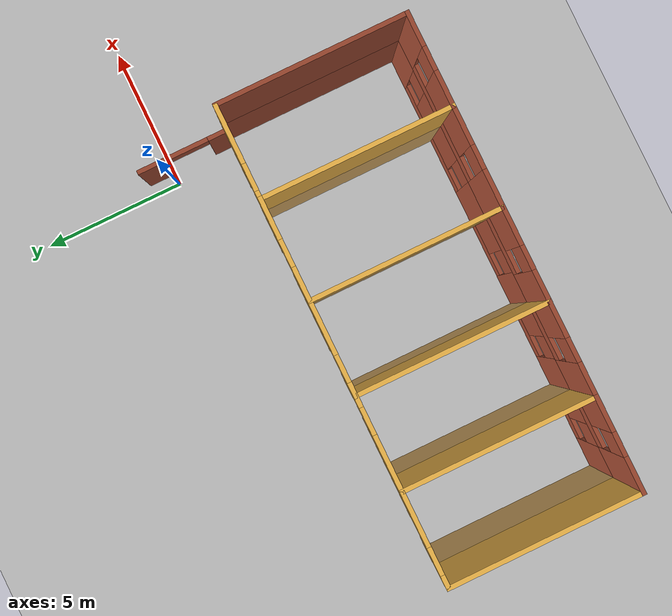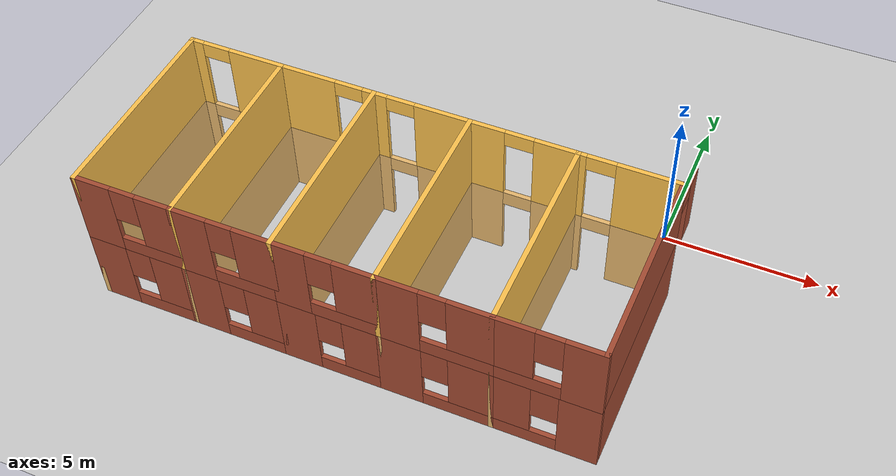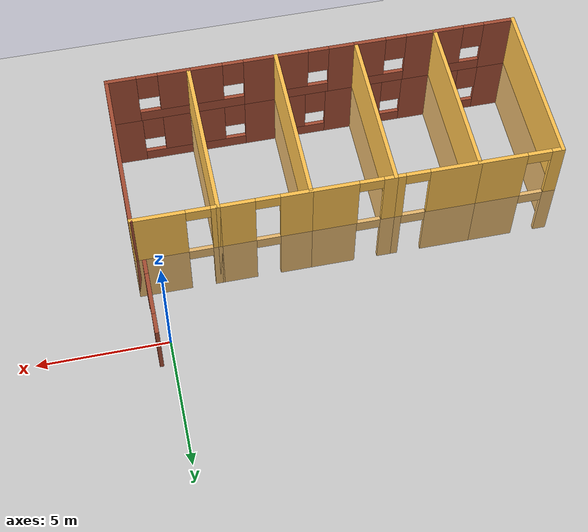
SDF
<sdf version="1.7">
 <world name="default">
  <model name="ground_plane">
   <static>1</static>
   <link name="link">
    <collision name="collision">
     <geometry><plane><normal>0 0 1</normal><size>100 100</size></plane></geometry>
     <surface>
      <contact><collide_bitmask>65535</collide_bitmask></contact>
      <friction><ode><mu>100</mu><mu2>50</mu2></ode></friction>
     </surface>
    </collision>
    <visual name="visual">
     <cast_shadows>0</cast_shadows>
     <geometry><plane><normal>0 0 1</normal><size>100 100</size></plane></geometry>
     <material>
      <script><uri>file://media/materials/scripts/gazebo.material</uri><name>Gazebo/Grey</name></script>
     </material>
    </visual>
   </link>
  </model>
  <model name="DepartmentBuilding">
   <pose>-25.6559 18.8293 0 0 -0 0</pose>
   <link name="Wall_15">
    <collision name="Wall_15_Collision">
     <geometry><box><size>6.5 0.15 2.5</size></box></geometry>
     <pose>0 0 1.25 0 -0 0</pose>
    </collision>
    <visual name="Wall_15_Visual">
     <pose>0 0 1.25 0 -0 0</pose>
     <geometry><box><size>6.5 0.15 2.5</size></box></geometry>
     <material>
      <script><uri>file://media/materials/scripts/gazebo.material</uri><name>Gazebo/Bricks</name></script>
      <ambient>1 1 1 1</ambient>
     </material>
     <meta><layer>0</layer></meta>
    </visual>
    <pose>26.3896 -24.2565 0 0 -0 -1.5708</pose>
   </link>
   <link name="Wall_16">
    <pose>24.8396 -27.4315 0 0 -0 3.14159</pose>
    <visual name="Wall_16_Visual_0">
     <pose>-1.01037 0 1.25 0 -0 0</pose>
     <geometry><box><size>1.22925 0.15 2.5</size></box></geometry>
     <material>
      <script><uri>file://media/materials/scripts/gazebo.material</uri><name>Gazebo/Bricks</name></script>
      <ambient>1 1 1 1</ambient>
     </material>
     <meta><layer>0</layer></meta>
    </visual>
    <collision name="Wall_16_Collision_0">
     <geometry><box><size>1.22925 0.15 2.5</size></box></geometry>
     <pose>-1.01037 0 1.25 0 -0 0</pose>
    </collision>
    <visual name="Wall_16_Visual_1">
     <pose>0.614626 0 0.25 0 -0 0</pose>
     <geometry><box><size>2.02075 0.15 0.5</size></box></geometry>
     <material>
      <script><uri>file://media/materials/scripts/gazebo.material</uri><name>Gazebo/Bricks</name></script>
      <ambient>1 1 1 1</ambient>
     </material>
     <meta><layer>0</layer></meta>
    </visual>
    <collision name="Wall_16_Collision_1">
     <geometry><box><size>2.02075 0.15 0.5</size></box></geometry>
     <pose>0.614626 0 0.25 0 -0 0</pose>
    </collision>
    <visual name="Wall_16_Visual_2">
     <pose>1.01463 0 1.5 0 -0 0</pose>
     <geometry><box><size>1.22075 0.15 2</size></box></geometry>
     <material>
      <script><uri>file://media/materials/scripts/gazebo.material</uri><name>Gazebo/Bricks</name></script>
      <ambient>1 1 1 1</ambient>
     </material>
     <meta><layer>0</layer></meta>
    </visual>
    <collision name="Wall_16_Collision_2">
     <geometry><box><size>1.22075 0.15 2</size></box></geometry>
     <pose>1.01463 0 1.5 0 -0 0</pose>
    </collision>
    <visual name="Wall_16_Visual_3">
     <pose>0.004251 0 1.9 0 -0 0</pose>
     <geometry><box><size>0.8 0.15 1.2</size></box></geometry>
     <material>
      <script><uri>file://media/materials/scripts/gazebo.material</uri><name>Gazebo/Bricks</name></script>
      <ambient>1 1 1 1</ambient>
     </material>
     <meta><layer>0</layer></meta>
    </visual>
    <collision name="Wall_16_Collision_3">
     <geometry><box><size>0.8 0.15 1.2</size></box></geometry>
     <pose>0.004251 0 1.9 0 -0 0</pose>
    </collision>
   </link>
   <link name="Wall_17">
    <collision name="Wall_17_Collision">
     <geometry><box><size>6.5 0.15 2.5</size></box></geometry>
     <pose>0 0 1.25 0 -0 0</pose>
    </collision>
    <visual name="Wall_17_Visual">
     <pose>0 0 1.25 0 -0 0</pose>
     <geometry><box><size>6.5 0.15 2.5</size></box></geometry>
     <material>
      <script><uri>file://media/materials/scripts/gazebo.material</uri><name>Gazebo/Grey</name></script>
      <ambient>0.913725 0.72549 0.431373 1</ambient>
     </material>
     <meta><layer>0</layer></meta>
    </visual>
    <pose>23.2896 -24.2565 0 0 -0 1.5708</pose>
   </link>
   <link name="Wall_18">
    <pose>24.8396 -21.0815 0 0 -0 0</pose>
    <visual name="Wall_18_Visual_0">
     <pose>-1.45463 0 1.25 0 -0 0</pose>
     <geometry><box><size>0.340747 0.15 2.5</size></box></geometry>
     <material>
      <script><uri>file://media/materials/scripts/gazebo.material</uri><name>Gazebo/Grey</name></script>
      <ambient>0.913725 0.72549 0.431373 1</ambient>
     </material>
     <meta><layer>0</layer></meta>
    </visual>
    <collision name="Wall_18_Collision_0">
     <geometry><box><size>0.340747 0.15 2.5</size></box></geometry>
     <pose>-1.45463 0 1.25 0 -0 0</pose>
    </collision>
    <visual name="Wall_18_Visual_1">
     <pose>0.620373 0 1.25 0 -0 0</pose>
     <geometry><box><size>2.00925 0.15 2.5</size></box></geometry>
     <material>
      <script><uri>file://media/materials/scripts/gazebo.material</uri><name>Gazebo/Grey</name></script>
      <ambient>0.913725 0.72549 0.431373 1</ambient>
     </material>
     <meta><layer>0</layer></meta>
    </visual>
    <collision name="Wall_18_Collision_1">
     <geometry><box><size>2.00925 0.15 2.5</size></box></geometry>
     <pose>0.620373 0 1.25 0 -0 0</pose>
    </collision>
    <visual name="Wall_18_Visual_2">
     <pose>-0.834253 0 2.25 0 -0 0</pose>
     <geometry><box><size>0.9 0.15 0.5</size></box></geometry>
     <material>
      <script><uri>file://media/materials/scripts/gazebo.material</uri><name>Gazebo/Grey</name></script>
      <ambient>0.913725 0.72549 0.431373 1</ambient>
     </material>
     <meta><layer>0</layer></meta>
    </visual>
    <collision name="Wall_18_Collision_2">
     <geometry><box><size>0.9 0.15 0.5</size></box></geometry>
     <pose>-0.834253 0 2.25 0 -0 0</pose>
    </collision>
   </link>
   <link name="Wall_185">
    <pose>26.1194 -19.5196 0 0 -0 -1.5708</pose>
    <visual name="Wall_185_Visual_0">
     <pose>-1.21969 0 1.25 0 -0 0</pose>
     <geometry><box><size>0.810611 0.15 2.5</size></box></geometry>
     <material>
      <script><uri>file://media/materials/scripts/gazebo.material</uri><name>Gazebo/Bricks</name></script>
      <ambient>1 1 1 1</ambient>
     </material>
     <meta><layer>0</layer></meta>
    </visual>
    <collision name="Wall_185_Collision_0">
     <geometry><box><size>0.810611 0.15 2.5</size></box></geometry>
     <pose>-1.21969 0 1.25 0 -0 0</pose>
    </collision>
    <visual name="Wall_185_Visual_1">
     <pose>1.25531 0 1.25 0 -0 0</pose>
     <geometry><box><size>0.739389 0.15 2.5</size></box></geometry>
     <material>
      <script><uri>file://media/materials/scripts/gazebo.material</uri><name>Gazebo/Bricks</name></script>
      <ambient>1 1 1 1</ambient>
     </material>
     <meta><layer>0</layer></meta>
    </visual>
    <collision name="Wall_185_Collision_1">
     <geometry><box><size>0.739389 0.15 2.5</size></box></geometry>
     <pose>1.25531 0 1.25 0 -0 0</pose>
    </collision>
    <visual name="Wall_185_Visual_2">
     <pose>0.035611 0 2.25 0 -0 0</pose>
     <geometry><box><size>1.7 0.15 0.5</size></box></geometry>
     <material>
      <script><uri>file://media/materials/scripts/gazebo.material</uri><name>Gazebo/Bricks</name></script>
      <ambient>1 1 1 1</ambient>
     </material>
     <meta><layer>0</layer></meta>
    </visual>
    <collision name="Wall_185_Collision_2">
     <geometry><box><size>1.7 0.15 0.5</size></box></geometry>
     <pose>0.035611 0 2.25 0 -0 0</pose>
    </collision>
   </link>
   <link name="Wall_20">
    <pose>21.6146 -21.0815 0 0 -0 3.14159</pose>
    <visual name="Wall_20_Visual_0">
     <pose>-1.04022 0 1.25 0 -0 0</pose>
     <geometry><box><size>1.41956 0.15 2.5</size></box></geometry>
     <material>
      <script><uri>file://media/materials/scripts/gazebo.material</uri><name>Gazebo/Grey</name></script>
      <ambient>0.913725 0.72549 0.431373 1</ambient>
     </material>
     <meta><layer>0</layer></meta>
    </visual>
    <collision name="Wall_20_Collision_0">
     <geometry><box><size>1.41956 0.15 2.5</size></box></geometry>
     <pose>-1.04022 0 1.25 0 -0 0</pose>
    </collision>
    <visual name="Wall_20_Visual_1">
     <pose>1.15978 0 1.25 0 -0 0</pose>
     <geometry><box><size>1.18044 0.15 2.5</size></box></geometry>
     <material>
      <script><uri>file://media/materials/scripts/gazebo.material</uri><name>Gazebo/Grey</name></script>
      <ambient>0.913725 0.72549 0.431373 1</ambient>
     </material>
     <meta><layer>0</layer></meta>
    </visual>
    <collision name="Wall_20_Collision_1">
     <geometry><box><size>1.18044 0.15 2.5</size></box></geometry>
     <pose>1.15978 0 1.25 0 -0 0</pose>
    </collision>
    <visual name="Wall_20_Visual_2">
     <pose>0.119562 0 2.25 0 -0 0</pose>
     <geometry><box><size>0.9 0.15 0.5</size></box></geometry>
     <material>
      <script><uri>file://media/materials/scripts/gazebo.material</uri><name>Gazebo/Grey</name></script>
      <ambient>0.913725 0.72549 0.431373 1</ambient>
     </material>
     <meta><layer>0</layer></meta>
    </visual>
    <collision name="Wall_20_Collision_2">
     <geometry><box><size>0.9 0.15 0.5</size></box></geometry>
     <pose>0.119562 0 2.25 0 -0 0</pose>
    </collision>
   </link>
   <link name="Wall_21">
    <collision name="Wall_21_Collision">
     <geometry><box><size>6.5 0.15 2.5</size></box></geometry>
     <pose>0 0 1.25 0 -0 0</pose>
    </collision>
    <visual name="Wall_21_Visual">
     <pose>0 0 1.25 0 -0 0</pose>
     <geometry><box><size>6.5 0.15 2.5</size></box></geometry>
     <material>
      <script><uri>file://media/materials/scripts/gazebo.material</uri><name>Gazebo/Grey</name></script>
      <ambient>0.913725 0.72549 0.431373 1</ambient>
     </material>
     <meta><layer>0</layer></meta>
    </visual>
    <pose>19.9396 -24.2565 0 0 -0 -1.5708</pose>
   </link>
   <link name="Wall_22">
    <pose>21.6146 -27.4315 0 0 -0 0</pose>
    <visual name="Wall_22_Visual_0">
     <pose>-1.07822 0 1.25 0 -0 0</pose>
     <geometry><box><size>1.34356 0.15 2.5</size></box></geometry>
     <material>
      <script><uri>file://media/materials/scripts/gazebo.material</uri><name>Gazebo/Bricks</name></script>
      <ambient>1 1 1 1</ambient>
     </material>
     <meta><layer>0</layer></meta>
    </visual>
    <collision name="Wall_22_Collision_0">
     <geometry><box><size>1.34356 0.15 2.5</size></box></geometry>
     <pose>-1.07822 0 1.25 0 -0 0</pose>
    </collision>
    <visual name="Wall_22_Visual_1">
     <pose>0.671778 0 0.25 0 -0 0</pose>
     <geometry><box><size>2.15645 0.15 0.5</size></box></geometry>
     <material>
      <script><uri>file://media/materials/scripts/gazebo.material</uri><name>Gazebo/Bricks</name></script>
      <ambient>1 1 1 1</ambient>
     </material>
     <meta><layer>0</layer></meta>
    </visual>
    <collision name="Wall_22_Collision_1">
     <geometry><box><size>2.15645 0.15 0.5</size></box></geometry>
     <pose>0.671778 0 0.25 0 -0 0</pose>
    </collision>
    <visual name="Wall_22_Visual_2">
     <pose>1.07178 0 1.5 0 -0 0</pose>
     <geometry><box><size>1.35644 0.15 2</size></box></geometry>
     <material>
      <script><uri>file://media/materials/scripts/gazebo.material</uri><name>Gazebo/Bricks</name></script>
      <ambient>1 1 1 1</ambient>
     </material>
     <meta><layer>0</layer></meta>
    </visual>
    <collision name="Wall_22_Collision_2">
     <geometry><box><size>1.35644 0.15 2</size></box></geometry>
     <pose>1.07178 0 1.5 0 -0 0</pose>
    </collision>
    <visual name="Wall_22_Visual_3">
     <pose>-0.006445 0 1.9 0 -0 0</pose>
     <geometry><box><size>0.8 0.15 1.2</size></box></geometry>
     <material>
      <script><uri>file://media/materials/scripts/gazebo.material</uri><name>Gazebo/Bricks</name></script>
      <ambient>1 1 1 1</ambient>
     </material>
     <meta><layer>0</layer></meta>
    </visual>
    <collision name="Wall_22_Collision_3">
     <geometry><box><size>0.8 0.15 1.2</size></box></geometry>
     <pose>-0.006445 0 1.9 0 -0 0</pose>
    </collision>
   </link>
   <link name="Wall_24">
    <pose>18.3896 -21.0815 0 0 -0 3.14159</pose>
    <visual name="Wall_24_Visual_0">
     <pose>-0.715927 0 1.25 0 -0 0</pose>
     <geometry><box><size>1.81815 0.15 2.5</size></box></geometry>
     <material>
      <script><uri>file://media/materials/scripts/gazebo.material</uri><name>Gazebo/Grey</name></script>
      <ambient>0.913725 0.72549 0.431373 1</ambient>
     </material>
     <meta><layer>0</layer></meta>
    </visual>
    <collision name="Wall_24_Collision_0">
     <geometry><box><size>1.81815 0.15 2.5</size></box></geometry>
     <pose>-0.715927 0 1.25 0 -0 0</pose>
    </collision>
    <visual name="Wall_24_Visual_1">
     <pose>1.35907 0 1.25 0 -0 0</pose>
     <geometry><box><size>0.531853 0.15 2.5</size></box></geometry>
     <material>
      <script><uri>file://media/materials/scripts/gazebo.material</uri><name>Gazebo/Grey</name></script>
      <ambient>0.913725 0.72549 0.431373 1</ambient>
     </material>
     <meta><layer>0</layer></meta>
    </visual>
    <collision name="Wall_24_Collision_1">
     <geometry><box><size>0.531853 0.15 2.5</size></box></geometry>
     <pose>1.35907 0 1.25 0 -0 0</pose>
    </collision>
    <visual name="Wall_24_Visual_2">
     <pose>0.643147 0 2.25 0 -0 0</pose>
     <geometry><box><size>0.9 0.15 0.5</size></box></geometry>
     <material>
      <script><uri>file://media/materials/scripts/gazebo.material</uri><name>Gazebo/Grey</name></script>
      <ambient>0.913725 0.72549 0.431373 1</ambient>
     </material>
     <meta><layer>0</layer></meta>
    </visual>
    <collision name="Wall_24_Collision_2">
     <geometry><box><size>0.9 0.15 0.5</size></box></geometry>
     <pose>0.643147 0 2.25 0 -0 0</pose>
    </collision>
   </link>
   <link name="Wall_25">
    <collision name="Wall_25_Collision">
     <geometry><box><size>6.5 0.15 2.5</size></box></geometry>
     <pose>0 0 1.25 0 -0 0</pose>
    </collision>
    <visual name="Wall_25_Visual">
     <pose>0 0 1.25 0 -0 0</pose>
     <geometry><box><size>6.5 0.15 2.5</size></box></geometry>
     <material>
      <script><uri>file://media/materials/scripts/gazebo.material</uri><name>Gazebo/Grey</name></script>
      <ambient>0.913725 0.72549 0.431373 1</ambient>
     </material>
     <meta><layer>0</layer></meta>
    </visual>
    <pose>16.8396 -24.2565 0 0 -0 -1.5708</pose>
   </link>
   <link name="Wall_26">
    <pose>18.3896 -27.4315 0 0 -0 0</pose>
    <visual name="Wall_26_Visual_0">
     <pose>-1.01667 0 1.25 0 -0 0</pose>
     <geometry><box><size>1.21665 0.15 2.5</size></box></geometry>
     <material>
      <script><uri>file://media/materials/scripts/gazebo.material</uri><name>Gazebo/Bricks</name></script>
      <ambient>1 1 1 1</ambient>
     </material>
     <meta><layer>0</layer></meta>
    </visual>
    <collision name="Wall_26_Collision_0">
     <geometry><box><size>1.21665 0.15 2.5</size></box></geometry>
     <pose>-1.01667 0 1.25 0 -0 0</pose>
    </collision>
    <visual name="Wall_26_Visual_1">
     <pose>0.608327 0 0.25 0 -0 0</pose>
     <geometry><box><size>2.03335 0.15 0.5</size></box></geometry>
     <material>
      <script><uri>file://media/materials/scripts/gazebo.material</uri><name>Gazebo/Bricks</name></script>
      <ambient>1 1 1 1</ambient>
     </material>
     <meta><layer>0</layer></meta>
    </visual>
    <collision name="Wall_26_Collision_1">
     <geometry><box><size>2.03335 0.15 0.5</size></box></geometry>
     <pose>0.608327 0 0.25 0 -0 0</pose>
    </collision>
    <visual name="Wall_26_Visual_2">
     <pose>1.00833 0 1.5 0 -0 0</pose>
     <geometry><box><size>1.23335 0.15 2</size></box></geometry>
     <material>
      <script><uri>file://media/materials/scripts/gazebo.material</uri><name>Gazebo/Bricks</name></script>
      <ambient>1 1 1 1</ambient>
     </material>
     <meta><layer>0</layer></meta>
    </visual>
    <collision name="Wall_26_Collision_2">
     <geometry><box><size>1.23335 0.15 2</size></box></geometry>
     <pose>1.00833 0 1.5 0 -0 0</pose>
    </collision>
    <visual name="Wall_26_Visual_3">
     <pose>-0.008347 0 1.9 0 -0 0</pose>
     <geometry><box><size>0.8 0.15 1.2</size></box></geometry>
     <material>
      <script><uri>file://media/materials/scripts/gazebo.material</uri><name>Gazebo/Bricks</name></script>
      <ambient>1 1 1 1</ambient>
     </material>
     <meta><layer>0</layer></meta>
    </visual>
    <collision name="Wall_26_Collision_3">
     <geometry><box><size>0.8 0.15 1.2</size></box></geometry>
     <pose>-0.008347 0 1.9 0 -0 0</pose>
    </collision>
   </link>
   <link name="Wall_28">
    <pose>15.2896 -21.0815 0 0 -0 3.14159</pose>
    <visual name="Wall_28_Visual_0">
     <pose>-1.41753 0 1.25 0 -0 0</pose>
     <geometry><box><size>0.414939 0.15 2.5</size></box></geometry>
     <material>
      <script><uri>file://media/materials/scripts/gazebo.material</uri><name>Gazebo/Grey</name></script>
      <ambient>0.913725 0.72549 0.431373 1</ambient>
     </material>
     <meta><layer>0</layer></meta>
    </visual>
    <collision name="Wall_28_Collision_0">
     <geometry><box><size>0.414939 0.15 2.5</size></box></geometry>
     <pose>-1.41753 0 1.25 0 -0 0</pose>
    </collision>
    <visual name="Wall_28_Visual_1">
     <pose>0.657469 0 1.25 0 -0 0</pose>
     <geometry><box><size>1.93506 0.15 2.5</size></box></geometry>
     <material>
      <script><uri>file://media/materials/scripts/gazebo.material</uri><name>Gazebo/Grey</name></script>
      <ambient>0.913725 0.72549 0.431373 1</ambient>
     </material>
     <meta><layer>0</layer></meta>
    </visual>
    <collision name="Wall_28_Collision_1">
     <geometry><box><size>1.93506 0.15 2.5</size></box></geometry>
     <pose>0.657469 0 1.25 0 -0 0</pose>
    </collision>
    <visual name="Wall_28_Visual_2">
     <pose>-0.760061 0 2.25 0 -0 0</pose>
     <geometry><box><size>0.9 0.15 0.5</size></box></geometry>
     <material>
      <script><uri>file://media/materials/scripts/gazebo.material</uri><name>Gazebo/Grey</name></script>
      <ambient>0.913725 0.72549 0.431373 1</ambient>
     </material>
     <meta><layer>0</layer></meta>
    </visual>
    <collision name="Wall_28_Collision_2">
     <geometry><box><size>0.9 0.15 0.5</size></box></geometry>
     <pose>-0.760061 0 2.25 0 -0 0</pose>
    </collision>
   </link>
   <link name="Wall_29">
    <collision name="Wall_29_Collision">
     <geometry><box><size>6.5 0.15 2.5</size></box></geometry>
     <pose>0 0 1.25 0 -0 0</pose>
    </collision>
    <visual name="Wall_29_Visual">
     <pose>0 0 1.25 0 -0 0</pose>
     <geometry><box><size>6.5 0.15 2.5</size></box></geometry>
     <material>
      <script><uri>file://media/materials/scripts/gazebo.material</uri><name>Gazebo/Grey</name></script>
      <ambient>0.913725 0.72549 0.431373 1</ambient>
     </material>
     <meta><layer>0</layer></meta>
    </visual>
    <pose>13.7396 -24.2565 0 0 -0 -1.5708</pose>
   </link>
   <link name="Wall_30">
    <pose>15.2896 -27.4315 0 0 -0 0</pose>
    <visual name="Wall_30_Visual_0">
     <pose>-1.00889 0 1.25 0 -0 0</pose>
     <geometry><box><size>1.23222 0.15 2.5</size></box></geometry>
     <material>
      <script><uri>file://media/materials/scripts/gazebo.material</uri><name>Gazebo/Bricks</name></script>
      <ambient>1 1 1 1</ambient>
     </material>
     <meta><layer>0</layer></meta>
    </visual>
    <collision name="Wall_30_Collision_0">
     <geometry><box><size>1.23222 0.15 2.5</size></box></geometry>
     <pose>-1.00889 0 1.25 0 -0 0</pose>
    </collision>
    <visual name="Wall_30_Visual_1">
     <pose>0.616112 0 0.25 0 -0 0</pose>
     <geometry><box><size>2.01778 0.15 0.5</size></box></geometry>
     <material>
      <script><uri>file://media/materials/scripts/gazebo.material</uri><name>Gazebo/Bricks</name></script>
      <ambient>1 1 1 1</ambient>
     </material>
     <meta><layer>0</layer></meta>
    </visual>
    <collision name="Wall_30_Collision_1">
     <geometry><box><size>2.01778 0.15 0.5</size></box></geometry>
     <pose>0.616112 0 0.25 0 -0 0</pose>
    </collision>
    <visual name="Wall_30_Visual_2">
     <pose>1.01611 0 1.5 0 -0 0</pose>
     <geometry><box><size>1.21778 0.15 2</size></box></geometry>
     <material>
      <script><uri>file://media/materials/scripts/gazebo.material</uri><name>Gazebo/Bricks</name></script>
      <ambient>1 1 1 1</ambient>
     </material>
     <meta><layer>0</layer></meta>
    </visual>
    <collision name="Wall_30_Collision_2">
     <geometry><box><size>1.21778 0.15 2</size></box></geometry>
     <pose>1.01611 0 1.5 0 -0 0</pose>
    </collision>
    <visual name="Wall_30_Visual_3">
     <pose>0.007224 0 1.9 0 -0 0</pose>
     <geometry><box><size>0.8 0.15 1.2</size></box></geometry>
     <material>
      <script><uri>file://media/materials/scripts/gazebo.material</uri><name>Gazebo/Bricks</name></script>
      <ambient>1 1 1 1</ambient>
     </material>
     <meta><layer>0</layer></meta>
    </visual>
    <collision name="Wall_30_Collision_3">
     <geometry><box><size>0.8 0.15 1.2</size></box></geometry>
     <pose>0.007224 0 1.9 0 -0 0</pose>
    </collision>
   </link>
   <link name="Wall_32">
    <pose>12.1896 -21.0815 0 0 -0 3.14159</pose>
    <visual name="Wall_32_Visual_0">
     <pose>-0.699937 0 1.25 0 -0 0</pose>
     <geometry><box><size>1.85013 0.15 2.5</size></box></geometry>
     <material>
      <script><uri>file://media/materials/scripts/gazebo.material</uri><name>Gazebo/Grey</name></script>
      <ambient>0.913725 0.72549 0.431373 1</ambient>
     </material>
     <meta><layer>0</layer></meta>
    </visual>
    <collision name="Wall_32_Collision_0">
     <geometry><box><size>1.85013 0.15 2.5</size></box></geometry>
     <pose>-0.699937 0 1.25 0 -0 0</pose>
    </collision>
    <visual name="Wall_32_Visual_1">
     <pose>1.37506 0 1.25 0 -0 0</pose>
     <geometry><box><size>0.499875 0.15 2.5</size></box></geometry>
     <material>
      <script><uri>file://media/materials/scripts/gazebo.material</uri><name>Gazebo/Grey</name></script>
      <ambient>0.913725 0.72549 0.431373 1</ambient>
     </material>
     <meta><layer>0</layer></meta>
    </visual>
    <collision name="Wall_32_Collision_1">
     <geometry><box><size>0.499875 0.15 2.5</size></box></geometry>
     <pose>1.37506 0 1.25 0 -0 0</pose>
    </collision>
    <visual name="Wall_32_Visual_2">
     <pose>0.675125 0 2.25 0 -0 0</pose>
     <geometry><box><size>0.9 0.15 0.5</size></box></geometry>
     <material>
      <script><uri>file://media/materials/scripts/gazebo.material</uri><name>Gazebo/Grey</name></script>
      <ambient>0.913725 0.72549 0.431373 1</ambient>
     </material>
     <meta><layer>0</layer></meta>
    </visual>
    <collision name="Wall_32_Collision_2">
     <geometry><box><size>0.9 0.15 0.5</size></box></geometry>
     <pose>0.675125 0 2.25 0 -0 0</pose>
    </collision>
   </link>
   <link name="Wall_33">
    <collision name="Wall_33_Collision">
     <geometry><box><size>6.5 0.15 2.5</size></box></geometry>
     <pose>0 0 1.25 0 -0 0</pose>
    </collision>
    <visual name="Wall_33_Visual">
     <pose>0 0 1.25 0 -0 0</pose>
     <geometry><box><size>6.5 0.15 2.5</size></box></geometry>
     <material>
      <script><uri>file://media/materials/scripts/gazebo.material</uri><name>Gazebo/Grey</name></script>
      <ambient>0.913725 0.72549 0.431373 1</ambient>
     </material>
     <meta><layer>0</layer></meta>
    </visual>
    <pose>10.6396 -24.2565 0 0 -0 -1.5708</pose>
   </link>
   <link name="Wall_34">
    <pose>12.1896 -27.4315 0 0 -0 0</pose>
    <visual name="Wall_34_Visual_0">
     <pose>-1.01283 0 1.25 0 -0 0</pose>
     <geometry><box><size>1.22435 0.15 2.5</size></box></geometry>
     <material>
      <script><uri>file://media/materials/scripts/gazebo.material</uri><name>Gazebo/Bricks</name></script>
      <ambient>1 1 1 1</ambient>
     </material>
     <meta><layer>0</layer></meta>
    </visual>
    <collision name="Wall_34_Collision_0">
     <geometry><box><size>1.22435 0.15 2.5</size></box></geometry>
     <pose>-1.01283 0 1.25 0 -0 0</pose>
    </collision>
    <visual name="Wall_34_Visual_1">
     <pose>0.612175 0 0.25 0 -0 0</pose>
     <geometry><box><size>2.02565 0.15 0.5</size></box></geometry>
     <material>
      <script><uri>file://media/materials/scripts/gazebo.material</uri><name>Gazebo/Bricks</name></script>
      <ambient>1 1 1 1</ambient>
     </material>
     <meta><layer>0</layer></meta>
    </visual>
    <collision name="Wall_34_Collision_1">
     <geometry><box><size>2.02565 0.15 0.5</size></box></geometry>
     <pose>0.612175 0 0.25 0 -0 0</pose>
    </collision>
    <visual name="Wall_34_Visual_2">
     <pose>1.01218 0 1.5 0 -0 0</pose>
     <geometry><box><size>1.22565 0.15 2</size></box></geometry>
     <material>
      <script><uri>file://media/materials/scripts/gazebo.material</uri><name>Gazebo/Bricks</name></script>
      <ambient>1 1 1 1</ambient>
     </material>
     <meta><layer>0</layer></meta>
    </visual>
    <collision name="Wall_34_Collision_2">
     <geometry><box><size>1.22565 0.15 2</size></box></geometry>
     <pose>1.01218 0 1.5 0 -0 0</pose>
    </collision>
    <visual name="Wall_34_Visual_3">
     <pose>-0.00065 0 1.9 0 -0 0</pose>
     <geometry><box><size>0.8 0.15 1.2</size></box></geometry>
     <material>
      <script><uri>file://media/materials/scripts/gazebo.material</uri><name>Gazebo/Bricks</name></script>
      <ambient>1 1 1 1</ambient>
     </material>
     <meta><layer>0</layer></meta>
    </visual>
    <collision name="Wall_34_Collision_3">
     <geometry><box><size>0.8 0.15 1.2</size></box></geometry>
     <pose>-0.00065 0 1.9 0 -0 0</pose>
    </collision>
   </link>
   <link name="Wall_782">
    <collision name="Wall_782_Collision">
     <geometry><box><size>6.5 0.15 2.5</size></box></geometry>
     <pose>0 0 1.25 0 -0 0</pose>
    </collision>
    <visual name="Wall_782_Visual">
     <pose>0 0 1.25 0 -0 0</pose>
     <geometry><box><size>6.5 0.15 2.5</size></box></geometry>
     <material>
      <script><uri>file://media/materials/scripts/gazebo.material</uri><name>Gazebo/Bricks</name></script>
      <ambient>1 1 1 1</ambient>
     </material>
     <meta><layer>1</layer></meta>
    </visual>
    <pose>26.3896 -24.2565 2.5 0 -0 -1.5708</pose>
   </link>
   <link name="Wall_783">
    <pose>24.8396 -27.4315 2.5 0 -0 3.14159</pose>
    <visual name="Wall_783_Visual_0">
     <pose>-1.02869 0 1.25 0 -0 0</pose>
     <geometry><box><size>1.19263 0.15 2.5</size></box></geometry>
     <material>
      <script><uri>file://media/materials/scripts/gazebo.material</uri><name>Gazebo/Bricks</name></script>
      <ambient>1 1 1 1</ambient>
     </material>
     <meta><layer>1</layer></meta>
    </visual>
    <collision name="Wall_783_Collision_0">
     <geometry><box><size>1.19263 0.15 2.5</size></box></geometry>
     <pose>-1.02869 0 1.25 0 -0 0</pose>
    </collision>
    <visual name="Wall_783_Visual_1">
     <pose>0.596315 0 0.25 0 -0 0</pose>
     <geometry><box><size>2.05737 0.15 0.5</size></box></geometry>
     <material>
      <script><uri>file://media/materials/scripts/gazebo.material</uri><name>Gazebo/Bricks</name></script>
      <ambient>1 1 1 1</ambient>
     </material>
     <meta><layer>1</layer></meta>
    </visual>
    <collision name="Wall_783_Collision_1">
     <geometry><box><size>2.05737 0.15 0.5</size></box></geometry>
     <pose>0.596315 0 0.25 0 -0 0</pose>
    </collision>
    <visual name="Wall_783_Visual_2">
     <pose>0.996315 0 1.5 0 -0 0</pose>
     <geometry><box><size>1.25737 0.15 2</size></box></geometry>
     <material>
      <script><uri>file://media/materials/scripts/gazebo.material</uri><name>Gazebo/Bricks</name></script>
      <ambient>1 1 1 1</ambient>
     </material>
     <meta><layer>1</layer></meta>
    </visual>
    <collision name="Wall_783_Collision_2">
     <geometry><box><size>1.25737 0.15 2</size></box></geometry>
     <pose>0.996315 0 1.5 0 -0 0</pose>
    </collision>
    <visual name="Wall_783_Visual_3">
     <pose>-0.03237 0 1.9 0 -0 0</pose>
     <geometry><box><size>0.8 0.15 1.2</size></box></geometry>
     <material>
      <script><uri>file://media/materials/scripts/gazebo.material</uri><name>Gazebo/Bricks</name></script>
      <ambient>1 1 1 1</ambient>
     </material>
     <meta><layer>1</layer></meta>
    </visual>
    <collision name="Wall_783_Collision_3">
     <geometry><box><size>0.8 0.15 1.2</size></box></geometry>
     <pose>-0.03237 0 1.9 0 -0 0</pose>
    </collision>
   </link>
   <link name="Wall_784">
    <collision name="Wall_784_Collision">
     <geometry><box><size>6.5 0.15 2.5</size></box></geometry>
     <pose>0 0 1.25 0 -0 0</pose>
    </collision>
    <visual name="Wall_784_Visual">
     <pose>0 0 1.25 0 -0 0</pose>
     <geometry><box><size>6.5 0.15 2.5</size></box></geometry>
     <material>
      <script><uri>file://media/materials/scripts/gazebo.material</uri><name>Gazebo/Grey</name></script>
      <ambient>1 0.764706 0.305882 1</ambient>
     </material>
     <meta><layer>1</layer></meta>
    </visual>
    <pose>23.2896 -24.2565 2.5 0 -0 1.5708</pose>
   </link>
   <link name="Wall_785">
    <pose>24.8396 -21.0815 2.5 0 -0 0</pose>
    <visual name="Wall_785_Visual_0">
     <pose>-1.45671 0 1.25 0 -0 0</pose>
     <geometry><box><size>0.336573 0.15 2.5</size></box></geometry>
     <material>
      <script><uri>file://media/materials/scripts/gazebo.material</uri><name>Gazebo/Grey</name></script>
      <ambient>1 0.764706 0.305882 1</ambient>
     </material>
     <meta><layer>1</layer></meta>
    </visual>
    <collision name="Wall_785_Collision_0">
     <geometry><box><size>0.336573 0.15 2.5</size></box></geometry>
     <pose>-1.45671 0 1.25 0 -0 0</pose>
    </collision>
    <visual name="Wall_785_Visual_1">
     <pose>0.618287 0 1.25 0 -0 0</pose>
     <geometry><box><size>2.01343 0.15 2.5</size></box></geometry>
     <material>
      <script><uri>file://media/materials/scripts/gazebo.material</uri><name>Gazebo/Grey</name></script>
      <ambient>1 0.764706 0.305882 1</ambient>
     </material>
     <meta><layer>1</layer></meta>
    </visual>
    <collision name="Wall_785_Collision_1">
     <geometry><box><size>2.01343 0.15 2.5</size></box></geometry>
     <pose>0.618287 0 1.25 0 -0 0</pose>
    </collision>
    <visual name="Wall_785_Visual_2">
     <pose>-0.838427 0 2.25 0 -0 0</pose>
     <geometry><box><size>0.9 0.15 0.5</size></box></geometry>
     <material>
      <script><uri>file://media/materials/scripts/gazebo.material</uri><name>Gazebo/Grey</name></script>
      <ambient>1 0.764706 0.305882 1</ambient>
     </material>
     <meta><layer>1</layer></meta>
    </visual>
    <collision name="Wall_785_Collision_2">
     <geometry><box><size>0.9 0.15 0.5</size></box></geometry>
     <pose>-0.838427 0 2.25 0 -0 0</pose>
    </collision>
   </link>
   <link name="Wall_786">
    <pose>21.6146 -21.0815 2.5 0 -0 3.14159</pose>
    <visual name="Wall_786_Visual_0">
     <pose>-1.04308 0 1.25 0 -0 0</pose>
     <geometry><box><size>1.41384 0.15 2.5</size></box></geometry>
     <material>
      <script><uri>file://media/materials/scripts/gazebo.material</uri><name>Gazebo/Grey</name></script>
      <ambient>1 0.764706 0.305882 1</ambient>
     </material>
     <meta><layer>1</layer></meta>
    </visual>
    <collision name="Wall_786_Collision_0">
     <geometry><box><size>1.41384 0.15 2.5</size></box></geometry>
     <pose>-1.04308 0 1.25 0 -0 0</pose>
    </collision>
    <visual name="Wall_786_Visual_1">
     <pose>1.15692 0 1.25 0 -0 0</pose>
     <geometry><box><size>1.18616 0.15 2.5</size></box></geometry>
     <material>
      <script><uri>file://media/materials/scripts/gazebo.material</uri><name>Gazebo/Grey</name></script>
      <ambient>1 0.764706 0.305882 1</ambient>
     </material>
     <meta><layer>1</layer></meta>
    </visual>
    <collision name="Wall_786_Collision_1">
     <geometry><box><size>1.18616 0.15 2.5</size></box></geometry>
     <pose>1.15692 0 1.25 0 -0 0</pose>
    </collision>
    <visual name="Wall_786_Visual_2">
     <pose>0.113844 0 2.25 0 -0 0</pose>
     <geometry><box><size>0.9 0.15 0.5</size></box></geometry>
     <material>
      <script><uri>file://media/materials/scripts/gazebo.material</uri><name>Gazebo/Grey</name></script>
      <ambient>1 0.764706 0.305882 1</ambient>
     </material>
     <meta><layer>1</layer></meta>
    </visual>
    <collision name="Wall_786_Collision_2">
     <geometry><box><size>0.9 0.15 0.5</size></box></geometry>
     <pose>0.113844 0 2.25 0 -0 0</pose>
    </collision>
   </link>
   <link name="Wall_787">
    <collision name="Wall_787_Collision">
     <geometry><box><size>6.5 0.15 2.5</size></box></geometry>
     <pose>0 0 1.25 0 -0 0</pose>
    </collision>
    <visual name="Wall_787_Visual">
     <pose>0 0 1.25 0 -0 0</pose>
     <geometry><box><size>6.5 0.15 2.5</size></box></geometry>
     <material>
      <script><uri>file://media/materials/scripts/gazebo.material</uri><name>Gazebo/Grey</name></script>
      <ambient>1 0.764706 0.305882 1</ambient>
     </material>
     <meta><layer>1</layer></meta>
    </visual>
    <pose>19.9396 -24.2565 2.5 0 -0 -1.5708</pose>
   </link>
   <link name="Wall_788">
    <pose>21.6146 -27.4315 2.5 0 -0 0</pose>
    <visual name="Wall_788_Visual_0">
     <pose>-1.08213 0 1.25 0 -0 0</pose>
     <geometry><box><size>1.33575 0.15 2.5</size></box></geometry>
     <material>
      <script><uri>file://media/materials/scripts/gazebo.material</uri><name>Gazebo/Bricks</name></script>
      <ambient>1 1 1 1</ambient>
     </material>
     <meta><layer>1</layer></meta>
    </visual>
    <collision name="Wall_788_Collision_0">
     <geometry><box><size>1.33575 0.15 2.5</size></box></geometry>
     <pose>-1.08213 0 1.25 0 -0 0</pose>
    </collision>
    <visual name="Wall_788_Visual_1">
     <pose>0.667873 0 0.25 0 -0 0</pose>
     <geometry><box><size>2.16425 0.15 0.5</size></box></geometry>
     <material>
      <script><uri>file://media/materials/scripts/gazebo.material</uri><name>Gazebo/Bricks</name></script>
      <ambient>1 1 1 1</ambient>
     </material>
     <meta><layer>1</layer></meta>
    </visual>
    <collision name="Wall_788_Collision_1">
     <geometry><box><size>2.16425 0.15 0.5</size></box></geometry>
     <pose>0.667873 0 0.25 0 -0 0</pose>
    </collision>
    <visual name="Wall_788_Visual_2">
     <pose>1.06787 0 1.5 0 -0 0</pose>
     <geometry><box><size>1.36425 0.15 2</size></box></geometry>
     <material>
      <script><uri>file://media/materials/scripts/gazebo.material</uri><name>Gazebo/Bricks</name></script>
      <ambient>1 1 1 1</ambient>
     </material>
     <meta><layer>1</layer></meta>
    </visual>
    <collision name="Wall_788_Collision_2">
     <geometry><box><size>1.36425 0.15 2</size></box></geometry>
     <pose>1.06787 0 1.5 0 -0 0</pose>
    </collision>
    <visual name="Wall_788_Visual_3">
     <pose>-0.014254 0 1.9 0 -0 0</pose>
     <geometry><box><size>0.8 0.15 1.2</size></box></geometry>
     <material>
      <script><uri>file://media/materials/scripts/gazebo.material</uri><name>Gazebo/Bricks</name></script>
      <ambient>1 1 1 1</ambient>
     </material>
     <meta><layer>1</layer></meta>
    </visual>
    <collision name="Wall_788_Collision_3">
     <geometry><box><size>0.8 0.15 1.2</size></box></geometry>
     <pose>-0.014254 0 1.9 0 -0 0</pose>
    </collision>
   </link>
   <link name="Wall_789">
    <pose>18.3896 -21.0815 2.5 0 -0 3.14159</pose>
    <visual name="Wall_789_Visual_0">
     <pose>-0.704463 0 1.25 0 -0 0</pose>
     <geometry><box><size>1.84108 0.15 2.5</size></box></geometry>
     <material>
      <script><uri>file://media/materials/scripts/gazebo.material</uri><name>Gazebo/Grey</name></script>
      <ambient>1 0.764706 0.305882 1</ambient>
     </material>
     <meta><layer>1</layer></meta>
    </visual>
    <collision name="Wall_789_Collision_0">
     <geometry><box><size>1.84108 0.15 2.5</size></box></geometry>
     <pose>-0.704463 0 1.25 0 -0 0</pose>
    </collision>
    <visual name="Wall_789_Visual_1">
     <pose>1.37054 0 1.25 0 -0 0</pose>
     <geometry><box><size>0.508925 0.15 2.5</size></box></geometry>
     <material>
      <script><uri>file://media/materials/scripts/gazebo.material</uri><name>Gazebo/Grey</name></script>
      <ambient>1 0.764706 0.305882 1</ambient>
     </material>
     <meta><layer>1</layer></meta>
    </visual>
    <collision name="Wall_789_Collision_1">
     <geometry><box><size>0.508925 0.15 2.5</size></box></geometry>
     <pose>1.37054 0 1.25 0 -0 0</pose>
    </collision>
    <visual name="Wall_789_Visual_2">
     <pose>0.666075 0 2.25 0 -0 0</pose>
     <geometry><box><size>0.9 0.15 0.5</size></box></geometry>
     <material>
      <script><uri>file://media/materials/scripts/gazebo.material</uri><name>Gazebo/Grey</name></script>
      <ambient>1 0.764706 0.305882 1</ambient>
     </material>
     <meta><layer>1</layer></meta>
    </visual>
    <collision name="Wall_789_Collision_2">
     <geometry><box><size>0.9 0.15 0.5</size></box></geometry>
     <pose>0.666075 0 2.25 0 -0 0</pose>
    </collision>
   </link>
   <link name="Wall_790">
    <collision name="Wall_790_Collision">
     <geometry><box><size>6.5 0.15 2.5</size></box></geometry>
     <pose>0 0 1.25 0 -0 0</pose>
    </collision>
    <visual name="Wall_790_Visual">
     <pose>0 0 1.25 0 -0 0</pose>
     <geometry><box><size>6.5 0.15 2.5</size></box></geometry>
     <material>
      <script><uri>file://media/materials/scripts/gazebo.material</uri><name>Gazebo/Grey</name></script>
      <ambient>1 0.764706 0.305882 1</ambient>
     </material>
     <meta><layer>1</layer></meta>
    </visual>
    <pose>16.8396 -24.2565 2.5 0 -0 -1.5708</pose>
   </link>
   <link name="Wall_791">
    <pose>18.3896 -27.4315 2.5 0 -0 0</pose>
    <visual name="Wall_791_Visual_0">
     <pose>-1.06053 0 1.25 0 -0 0</pose>
     <geometry><box><size>1.12894 0.15 2.5</size></box></geometry>
     <material>
      <script><uri>file://media/materials/scripts/gazebo.material</uri><name>Gazebo/Bricks</name></script>
      <ambient>1 1 1 1</ambient>
     </material>
     <meta><layer>1</layer></meta>
    </visual>
    <collision name="Wall_791_Collision_0">
     <geometry><box><size>1.12894 0.15 2.5</size></box></geometry>
     <pose>-1.06053 0 1.25 0 -0 0</pose>
    </collision>
    <visual name="Wall_791_Visual_1">
     <pose>0.56447 0 0.25 0 -0 0</pose>
     <geometry><box><size>2.12106 0.15 0.5</size></box></geometry>
     <material>
      <script><uri>file://media/materials/scripts/gazebo.material</uri><name>Gazebo/Bricks</name></script>
      <ambient>1 1 1 1</ambient>
     </material>
     <meta><layer>1</layer></meta>
    </visual>
    <collision name="Wall_791_Collision_1">
     <geometry><box><size>2.12106 0.15 0.5</size></box></geometry>
     <pose>0.56447 0 0.25 0 -0 0</pose>
    </collision>
    <visual name="Wall_791_Visual_2">
     <pose>0.96447 0 1.5 0 -0 0</pose>
     <geometry><box><size>1.32106 0.15 2</size></box></geometry>
     <material>
      <script><uri>file://media/materials/scripts/gazebo.material</uri><name>Gazebo/Bricks</name></script>
      <ambient>1 1 1 1</ambient>
     </material>
     <meta><layer>1</layer></meta>
    </visual>
    <collision name="Wall_791_Collision_2">
     <geometry><box><size>1.32106 0.15 2</size></box></geometry>
     <pose>0.96447 0 1.5 0 -0 0</pose>
    </collision>
    <visual name="Wall_791_Visual_3">
     <pose>-0.09606 0 1.9 0 -0 0</pose>
     <geometry><box><size>0.8 0.15 1.2</size></box></geometry>
     <material>
      <script><uri>file://media/materials/scripts/gazebo.material</uri><name>Gazebo/Bricks</name></script>
      <ambient>1 1 1 1</ambient>
     </material>
     <meta><layer>1</layer></meta>
    </visual>
    <collision name="Wall_791_Collision_3">
     <geometry><box><size>0.8 0.15 1.2</size></box></geometry>
     <pose>-0.09606 0 1.9 0 -0 0</pose>
    </collision>
   </link>
   <link name="Wall_792">
    <pose>15.2896 -21.0815 2.5 0 -0 3.14159</pose>
    <visual name="Wall_792_Visual_0">
     <pose>-1.40326 0 1.25 0 -0 0</pose>
     <geometry><box><size>0.443487 0.15 2.5</size></box></geometry>
     <material>
      <script><uri>file://media/materials/scripts/gazebo.material</uri><name>Gazebo/Grey</name></script>
      <ambient>1 0.764706 0.305882 1</ambient>
     </material>
     <meta><layer>1</layer></meta>
    </visual>
    <collision name="Wall_792_Collision_0">
     <geometry><box><size>0.443487 0.15 2.5</size></box></geometry>
     <pose>-1.40326 0 1.25 0 -0 0</pose>
    </collision>
    <visual name="Wall_792_Visual_1">
     <pose>0.671743 0 1.25 0 -0 0</pose>
     <geometry><box><size>1.90651 0.15 2.5</size></box></geometry>
     <material>
      <script><uri>file://media/materials/scripts/gazebo.material</uri><name>Gazebo/Grey</name></script>
      <ambient>1 0.764706 0.305882 1</ambient>
     </material>
     <meta><layer>1</layer></meta>
    </visual>
    <collision name="Wall_792_Collision_1">
     <geometry><box><size>1.90651 0.15 2.5</size></box></geometry>
     <pose>0.671743 0 1.25 0 -0 0</pose>
    </collision>
    <visual name="Wall_792_Visual_2">
     <pose>-0.731513 0 2.25 0 -0 0</pose>
     <geometry><box><size>0.9 0.15 0.5</size></box></geometry>
     <material>
      <script><uri>file://media/materials/scripts/gazebo.material</uri><name>Gazebo/Grey</name></script>
      <ambient>1 0.764706 0.305882 1</ambient>
     </material>
     <meta><layer>1</layer></meta>
    </visual>
    <collision name="Wall_792_Collision_2">
     <geometry><box><size>0.9 0.15 0.5</size></box></geometry>
     <pose>-0.731513 0 2.25 0 -0 0</pose>
    </collision>
   </link>
   <link name="Wall_793">
    <collision name="Wall_793_Collision">
     <geometry><box><size>6.5 0.15 2.5</size></box></geometry>
     <pose>0 0 1.25 0 -0 0</pose>
    </collision>
    <visual name="Wall_793_Visual">
     <pose>0 0 1.25 0 -0 0</pose>
     <geometry><box><size>6.5 0.15 2.5</size></box></geometry>
     <material>
      <script><uri>file://media/materials/scripts/gazebo.material</uri><name>Gazebo/Grey</name></script>
      <ambient>1 0.764706 0.305882 1</ambient>
     </material>
     <meta><layer>1</layer></meta>
    </visual>
    <pose>13.7396 -24.2565 2.5 0 -0 -1.5708</pose>
   </link>
   <link name="Wall_794">
    <pose>15.2896 -27.4315 2.5 0 -0 0</pose>
    <visual name="Wall_794_Visual_0">
     <pose>-1.02322 0 1.25 0 -0 0</pose>
     <geometry><box><size>1.20357 0.15 2.5</size></box></geometry>
     <material>
      <script><uri>file://media/materials/scripts/gazebo.material</uri><name>Gazebo/Bricks</name></script>
      <ambient>1 1 1 1</ambient>
     </material>
     <meta><layer>1</layer></meta>
    </visual>
    <collision name="Wall_794_Collision_0">
     <geometry><box><size>1.20357 0.15 2.5</size></box></geometry>
     <pose>-1.02322 0 1.25 0 -0 0</pose>
    </collision>
    <visual name="Wall_794_Visual_1">
     <pose>0.601784 0 0.25 0 -0 0</pose>
     <geometry><box><size>2.04643 0.15 0.5</size></box></geometry>
     <material>
      <script><uri>file://media/materials/scripts/gazebo.material</uri><name>Gazebo/Bricks</name></script>
      <ambient>1 1 1 1</ambient>
     </material>
     <meta><layer>1</layer></meta>
    </visual>
    <collision name="Wall_794_Collision_1">
     <geometry><box><size>2.04643 0.15 0.5</size></box></geometry>
     <pose>0.601784 0 0.25 0 -0 0</pose>
    </collision>
    <visual name="Wall_794_Visual_2">
     <pose>1.00178 0 1.5 0 -0 0</pose>
     <geometry><box><size>1.24643 0.15 2</size></box></geometry>
     <material>
      <script><uri>file://media/materials/scripts/gazebo.material</uri><name>Gazebo/Bricks</name></script>
      <ambient>1 1 1 1</ambient>
     </material>
     <meta><layer>1</layer></meta>
    </visual>
    <collision name="Wall_794_Collision_2">
     <geometry><box><size>1.24643 0.15 2</size></box></geometry>
     <pose>1.00178 0 1.5 0 -0 0</pose>
    </collision>
    <visual name="Wall_794_Visual_3">
     <pose>-0.021433 0 1.9 0 -0 0</pose>
     <geometry><box><size>0.8 0.15 1.2</size></box></geometry>
     <material>
      <script><uri>file://media/materials/scripts/gazebo.material</uri><name>Gazebo/Bricks</name></script>
      <ambient>1 1 1 1</ambient>
     </material>
     <meta><layer>1</layer></meta>
    </visual>
    <collision name="Wall_794_Collision_3">
     <geometry><box><size>0.8 0.15 1.2</size></box></geometry>
     <pose>-0.021433 0 1.9 0 -0 0</pose>
    </collision>
   </link>
   <link name="Wall_795">
    <pose>12.1896 -21.0815 2.5 0 -0 3.14159</pose>
    <visual name="Wall_795_Visual_0">
     <pose>-0.69224 0 1.25 0 -0 0</pose>
     <geometry><box><size>1.86552 0.15 2.5</size></box></geometry>
     <material>
      <script><uri>file://media/materials/scripts/gazebo.material</uri><name>Gazebo/Grey</name></script>
      <ambient>1 0.764706 0.305882 1</ambient>
     </material>
     <meta><layer>1</layer></meta>
    </visual>
    <collision name="Wall_795_Collision_0">
     <geometry><box><size>1.86552 0.15 2.5</size></box></geometry>
     <pose>-0.69224 0 1.25 0 -0 0</pose>
    </collision>
    <visual name="Wall_795_Visual_1">
     <pose>1.38276 0 1.25 0 -0 0</pose>
     <geometry><box><size>0.48448 0.15 2.5</size></box></geometry>
     <material>
      <script><uri>file://media/materials/scripts/gazebo.material</uri><name>Gazebo/Grey</name></script>
      <ambient>1 0.764706 0.305882 1</ambient>
     </material>
     <meta><layer>1</layer></meta>
    </visual>
    <collision name="Wall_795_Collision_1">
     <geometry><box><size>0.48448 0.15 2.5</size></box></geometry>
     <pose>1.38276 0 1.25 0 -0 0</pose>
    </collision>
    <visual name="Wall_795_Visual_2">
     <pose>0.69052 0 2.25 0 -0 0</pose>
     <geometry><box><size>0.9 0.15 0.5</size></box></geometry>
     <material>
      <script><uri>file://media/materials/scripts/gazebo.material</uri><name>Gazebo/Grey</name></script>
      <ambient>1 0.764706 0.305882 1</ambient>
     </material>
     <meta><layer>1</layer></meta>
    </visual>
    <collision name="Wall_795_Collision_2">
     <geometry><box><size>0.9 0.15 0.5</size></box></geometry>
     <pose>0.69052 0 2.25 0 -0 0</pose>
    </collision>
   </link>
   <link name="Wall_796">
    <collision name="Wall_796_Collision">
     <geometry><box><size>6.5 0.15 2.5</size></box></geometry>
     <pose>0 0 1.25 0 -0 0</pose>
    </collision>
    <visual name="Wall_796_Visual">
     <pose>0 0 1.25 0 -0 0</pose>
     <geometry><box><size>6.5 0.15 2.5</size></box></geometry>
     <material>
      <script><uri>file://media/materials/scripts/gazebo.material</uri><name>Gazebo/Grey</name></script>
      <ambient>1 0.764706 0.305882 1</ambient>
     </material>
     <meta><layer>1</layer></meta>
    </visual>
    <pose>10.6396 -24.2565 2.5 0 -0 -1.5708</pose>
   </link>
   <link name="Wall_797">
    <pose>12.1896 -27.4315 2.5 0 -0 0</pose>
    <visual name="Wall_797_Visual_0">
     <pose>-1.00349 0 1.25 0 -0 0</pose>
     <geometry><box><size>1.24301 0.15 2.5</size></box></geometry>
     <material>
      <script><uri>file://media/materials/scripts/gazebo.material</uri><name>Gazebo/Bricks</name></script>
      <ambient>1 1 1 1</ambient>
     </material>
     <meta><layer>1</layer></meta>
    </visual>
    <collision name="Wall_797_Collision_0">
     <geometry><box><size>1.24301 0.15 2.5</size></box></geometry>
     <pose>-1.00349 0 1.25 0 -0 0</pose>
    </collision>
    <visual name="Wall_797_Visual_1">
     <pose>0.621507 0 0.25 0 -0 0</pose>
     <geometry><box><size>2.00698 0.15 0.5</size></box></geometry>
     <material>
      <script><uri>file://media/materials/scripts/gazebo.material</uri><name>Gazebo/Bricks</name></script>
      <ambient>1 1 1 1</ambient>
     </material>
     <meta><layer>1</layer></meta>
    </visual>
    <collision name="Wall_797_Collision_1">
     <geometry><box><size>2.00698 0.15 0.5</size></box></geometry>
     <pose>0.621507 0 0.25 0 -0 0</pose>
    </collision>
    <visual name="Wall_797_Visual_2">
     <pose>1.02151 0 1.5 0 -0 0</pose>
     <geometry><box><size>1.20698 0.15 2</size></box></geometry>
     <material>
      <script><uri>file://media/materials/scripts/gazebo.material</uri><name>Gazebo/Bricks</name></script>
      <ambient>1 1 1 1</ambient>
     </material>
     <meta><layer>1</layer></meta>
    </visual>
    <collision name="Wall_797_Collision_2">
     <geometry><box><size>1.20698 0.15 2</size></box></geometry>
     <pose>1.02151 0 1.5 0 -0 0</pose>
    </collision>
    <visual name="Wall_797_Visual_3">
     <pose>0.018015 0 1.9 0 -0 0</pose>
     <geometry><box><size>0.8 0.15 1.2</size></box></geometry>
     <material>
      <script><uri>file://media/materials/scripts/gazebo.material</uri><name>Gazebo/Bricks</name></script>
      <ambient>1 1 1 1</ambient>
     </material>
     <meta><layer>1</layer></meta>
    </visual>
    <collision name="Wall_797_Collision_3">
     <geometry><box><size>0.8 0.15 1.2</size></box></geometry>
     <pose>0.018015 0 1.9 0 -0 0</pose>
    </collision>
   </link>
   <static>1</static>
  </model>
 </world>
</sdf>
